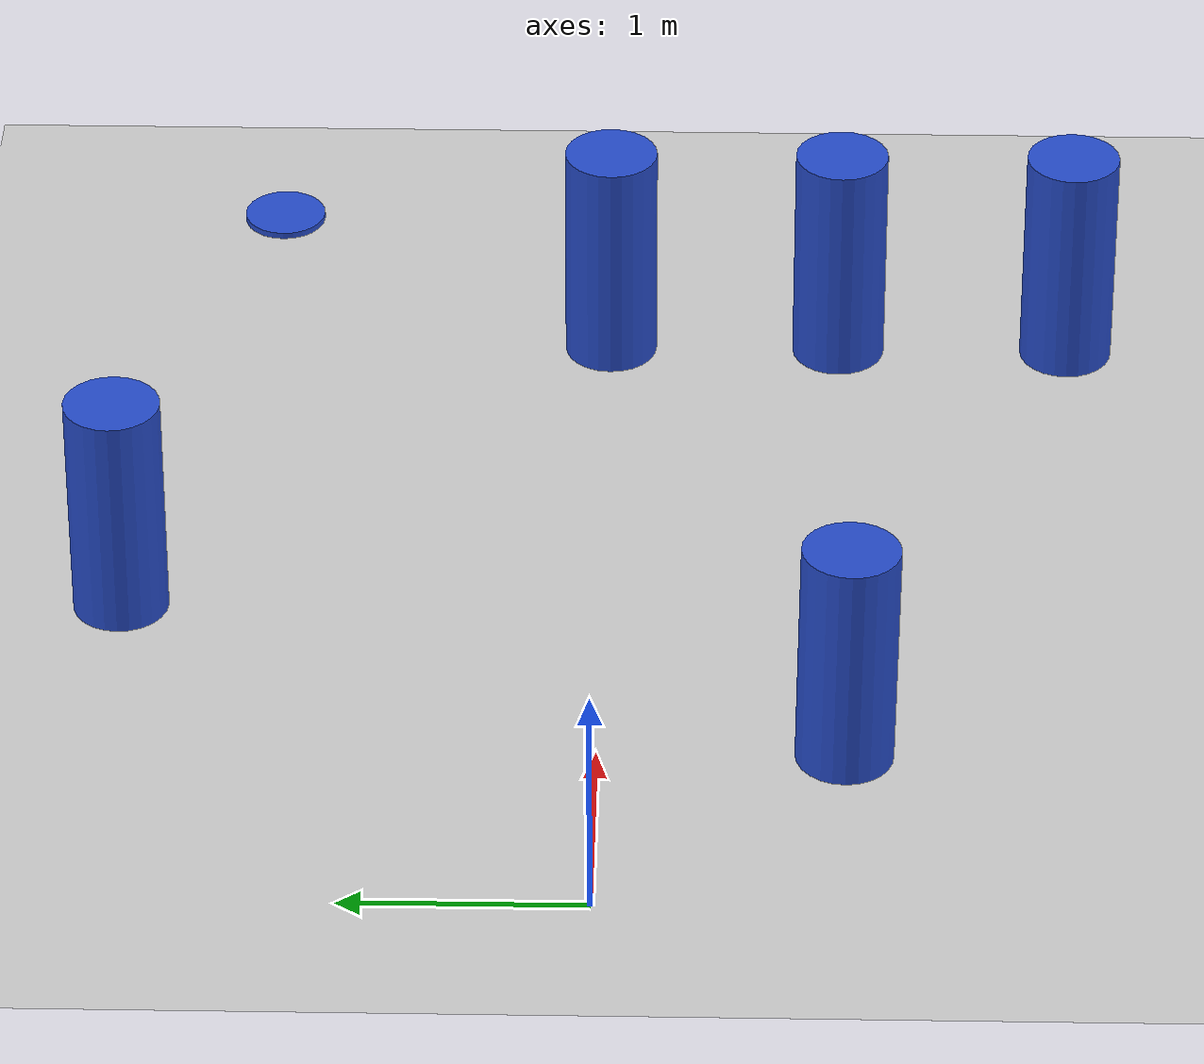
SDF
<sdf version="1.7">
 <world name="default">
  <physics type="ode">
   <ode>
    <solver>
     <type>quick</type>
     <iters>20</iters>
     <sor>1</sor>
     <use_dynamic_moi_rescaling>0</use_dynamic_moi_rescaling>
    </solver>
    <constraints>
     <cfm>0</cfm>
     <erp>0.2</erp>
     <contact_max_correcting_vel>100</contact_max_correcting_vel>
     <contact_surface_layer>0</contact_surface_layer>
    </constraints>
   </ode>
   <real_time_update_rate>1000</real_time_update_rate>
   <max_step_size>0.001</max_step_size>
   <real_time_factor>1</real_time_factor>
  </physics>
  <light name="sun" type="directional">
   <pose>0 0 10 0 -0 0</pose>
   <diffuse>0.8 0.8 0.8 1</diffuse>
   <specular>0.2 0.2 0.2 1</specular>
   <attenuation>
    <range>1000</range>
    <constant>0.9</constant>
    <linear>0.01</linear>
    <quadratic>0.001</quadratic>
   </attenuation>
   <direction>-0.5 0.1 -0.9</direction>
   <spot><inner_angle>0</inner_angle><outer_angle>0</outer_angle><falloff>0</falloff></spot>
  </light>
  <model name="ground_plane">
   <static>1</static>
   <link name="link">
    <collision name="collision">
     <geometry><plane><normal>0 0 1</normal><size>100 100</size></plane></geometry>
     <surface>
      <contact><collide_bitmask>65535</collide_bitmask></contact>
      <friction><ode><mu>100</mu><mu2>50</mu2></ode></friction>
     </surface>
    </collision>
    <visual name="visual">
     <cast_shadows>0</cast_shadows>
     <geometry><plane><normal>0 0 1</normal><size>100 100</size></plane></geometry>
     <material>
      <script><uri>file://media/materials/scripts/gazebo.material</uri><name>Gazebo/Grey</name></script>
     </material>
    </visual>
   </link>
  </model>
  <gravity>0 0 -9.81</gravity>
  <magnetic_field>6e-06 2.3e-05 -4.2e-05</magnetic_field>
  <atmosphere type="adiabatic"/>
  <scene><ambient>0.4 0.4 0.4 1</ambient><background>0.7 0.7 0.7 1</background><shadows>1</shadows></scene>
  <spherical_coordinates>
   <surface_model>EARTH_WGS84</surface_model>
   <latitude_deg>0</latitude_deg>
   <longitude_deg>0</longitude_deg>
   <elevation>0</elevation>
   <heading_deg>0</heading_deg>
  </spherical_coordinates>
  <model name="20x100cm_cylinder">
   <link name="link">
    <inertial>
     <mass>1</mass>
     <inertia><ixx>0.145833</ixx><ixy>0</ixy><ixz>0</ixz><iyy>0.145833</iyy><iyz>0</iyz><izz>0.125</izz></inertia>
    </inertial>
    <visual name="visual">
     <geometry><cylinder><radius>0.2</radius><length>1</length></cylinder></geometry>
     <material>
      <script><name>Gazebo/Blue</name><uri>file://media/materials/scripts/gazebo.material</uri></script>
      <shader type="pixel"><normal_map>__default__</normal_map></shader>
      <ambient>0.3 0.3 0.3 1</ambient>
      <diffuse>0.7 0.7 0.7 1</diffuse>
      <specular>0.01 0.01 0.01 1</specular>
      <emissive>0 0 0 1</emissive>
     </material>
    </visual>
    <collision name="collision">
     <geometry><cylinder><radius>0.2</radius><length>1</length></cylinder></geometry>
     <surface>
      <friction>
       <ode><mu>1</mu><mu2>1</mu2><fdir1>0 0 0</fdir1><slip1>0</slip1><slip2>0</slip2></ode>
       <torsional>
        <coefficient>1</coefficient>
        <patch_radius>0</patch_radius>
        <surface_radius>0</surface_radius>
        <use_patch_radius>1</use_patch_radius>
        <ode><slip>0</slip></ode>
       </torsional>
      </friction>
      <bounce><restitution_coefficient>0</restitution_coefficient><threshold>1e+06</threshold></bounce>
      <contact>
       <collide_without_contact>0</collide_without_contact>
       <collide_without_contact_bitmask>1</collide_without_contact_bitmask>
       <collide_bitmask>1</collide_bitmask>
       <ode>
        <soft_cfm>0</soft_cfm>
        <soft_erp>0.2</soft_erp>
        <kp>1e+13</kp>
        <kd>1</kd>
        <max_vel>0.01</max_vel>
        <min_depth>0</min_depth>
       </ode>
       <bullet>
        <split_impulse>1</split_impulse>
        <split_impulse_penetration_threshold>-0.01</split_impulse_penetration_threshold>
        <soft_cfm>0</soft_cfm>
        <soft_erp>0.2</soft_erp>
        <kp>1e+13</kp>
        <kd>1</kd>
       </bullet>
      </contact>
     </surface>
    </collision>
   </link>
   <static>0</static>
   <pose>2.00001 2 0.499999 0 0 -1.6e-05</pose>
  </model>
  <model name="20x100cm_cylinder_0">
   <link name="link">
    <inertial>
     <mass>1</mass>
     <inertia><ixx>0.145833</ixx><ixy>0</ixy><ixz>0</ixz><iyy>0.145833</iyy><iyz>0</iyz><izz>0.125</izz></inertia>
    </inertial>
    <visual name="visual">
     <geometry><cylinder><radius>0.2</radius><length>1</length></cylinder></geometry>
     <material>
      <script><name>Gazebo/Blue</name><uri>file://media/materials/scripts/gazebo.material</uri></script>
      <shader type="pixel"><normal_map>__default__</normal_map></shader>
      <ambient>0.3 0.3 0.3 1</ambient>
      <diffuse>0.7 0.7 0.7 1</diffuse>
      <specular>0.01 0.01 0.01 1</specular>
      <emissive>0 0 0 1</emissive>
     </material>
    </visual>
    <collision name="collision">
     <geometry><cylinder><radius>0.2</radius><length>1</length></cylinder></geometry>
     <surface>
      <friction>
       <ode><mu>1</mu><mu2>1</mu2><fdir1>0 0 0</fdir1><slip1>0</slip1><slip2>0</slip2></ode>
       <torsional>
        <coefficient>1</coefficient>
        <patch_radius>0</patch_radius>
        <surface_radius>0</surface_radius>
        <use_patch_radius>1</use_patch_radius>
        <ode><slip>0</slip></ode>
       </torsional>
      </friction>
      <bounce><restitution_coefficient>0</restitution_coefficient><threshold>1e+06</threshold></bounce>
      <contact>
       <collide_without_contact>0</collide_without_contact>
       <collide_without_contact_bitmask>1</collide_without_contact_bitmask>
       <collide_bitmask>1</collide_bitmask>
       <ode>
        <soft_cfm>0</soft_cfm>
        <soft_erp>0.2</soft_erp>
        <kp>1e+13</kp>
        <kd>1</kd>
        <max_vel>0.01</max_vel>
        <min_depth>0</min_depth>
       </ode>
       <bullet>
        <split_impulse>1</split_impulse>
        <split_impulse_penetration_threshold>-0.01</split_impulse_penetration_threshold>
        <soft_cfm>0</soft_cfm>
        <soft_erp>0.2</soft_erp>
        <kp>1e+13</kp>
        <kd>1</kd>
       </bullet>
      </contact>
     </surface>
    </collision>
   </link>
   <static>0</static>
   <pose>4.00001 -2 0.499999 0 0 -1.6e-05</pose>
  </model>
  <model name="20x100cm_cylinder_1">
   <link name="link">
    <inertial>
     <mass>1</mass>
     <inertia><ixx>0.145833</ixx><ixy>0</ixy><ixz>0</ixz><iyy>0.145833</iyy><iyz>0</iyz><izz>0.125</izz></inertia>
    </inertial>
    <visual name="visual">
     <geometry><cylinder><radius>0.2</radius><length>1</length></cylinder></geometry>
     <material>
      <script><name>Gazebo/Blue</name><uri>file://media/materials/scripts/gazebo.material</uri></script>
      <shader type="pixel"><normal_map>__default__</normal_map></shader>
      <ambient>0.3 0.3 0.3 1</ambient>
      <diffuse>0.7 0.7 0.7 1</diffuse>
      <specular>0.01 0.01 0.01 1</specular>
      <emissive>0 0 0 1</emissive>
     </material>
    </visual>
    <collision name="collision">
     <geometry><cylinder><radius>0.2</radius><length>1</length></cylinder></geometry>
     <surface>
      <friction>
       <ode><mu>1</mu><mu2>1</mu2><fdir1>0 0 0</fdir1><slip1>0</slip1><slip2>0</slip2></ode>
       <torsional>
        <coefficient>1</coefficient>
        <patch_radius>0</patch_radius>
        <surface_radius>0</surface_radius>
        <use_patch_radius>1</use_patch_radius>
        <ode><slip>0</slip></ode>
       </torsional>
      </friction>
      <bounce><restitution_coefficient>0</restitution_coefficient><threshold>1e+06</threshold></bounce>
      <contact>
       <collide_without_contact>0</collide_without_contact>
       <collide_without_contact_bitmask>1</collide_without_contact_bitmask>
       <collide_bitmask>1</collide_bitmask>
       <ode>
        <soft_cfm>0</soft_cfm>
        <soft_erp>0.2</soft_erp>
        <kp>1e+13</kp>
        <kd>1</kd>
        <max_vel>0.01</max_vel>
        <min_depth>0</min_depth>
       </ode>
       <bullet>
        <split_impulse>1</split_impulse>
        <split_impulse_penetration_threshold>-0.01</split_impulse_penetration_threshold>
        <soft_cfm>0</soft_cfm>
        <soft_erp>0.2</soft_erp>
        <kp>1e+13</kp>
        <kd>1</kd>
       </bullet>
      </contact>
     </surface>
    </collision>
   </link>
   <static>0</static>
   <pose>4.00001 3e-06 0.499999 0 0 -1.6e-05</pose>
  </model>
  <model name="20x100cm_cylinder_2">
   <link name="link">
    <inertial>
     <mass>1</mass>
     <inertia><ixx>0.145833</ixx><ixy>0</ixy><ixz>0</ixz><iyy>0.145833</iyy><iyz>0</iyz><izz>0.125</izz></inertia>
    </inertial>
    <visual name="visual">
     <geometry><cylinder><radius>0.2</radius><length>1</length></cylinder></geometry>
     <material>
      <script><name>Gazebo/Blue</name><uri>file://media/materials/scripts/gazebo.material</uri></script>
      <shader type="pixel"><normal_map>__default__</normal_map></shader>
      <ambient>0.3 0.3 0.3 1</ambient>
      <diffuse>0.7 0.7 0.7 1</diffuse>
      <specular>0.01 0.01 0.01 1</specular>
      <emissive>0 0 0 1</emissive>
     </material>
    </visual>
    <collision name="collision">
     <geometry><cylinder><radius>0.2</radius><length>1</length></cylinder></geometry>
     <surface>
      <friction>
       <ode><mu>1</mu><mu2>1</mu2><fdir1>0 0 0</fdir1><slip1>0</slip1><slip2>0</slip2></ode>
       <torsional>
        <coefficient>1</coefficient>
        <patch_radius>0</patch_radius>
        <surface_radius>0</surface_radius>
        <use_patch_radius>1</use_patch_radius>
        <ode><slip>0</slip></ode>
       </torsional>
      </friction>
      <bounce><restitution_coefficient>0</restitution_coefficient><threshold>1e+06</threshold></bounce>
      <contact>
       <collide_without_contact>0</collide_without_contact>
       <collide_without_contact_bitmask>1</collide_without_contact_bitmask>
       <collide_bitmask>1</collide_bitmask>
       <ode>
        <soft_cfm>0</soft_cfm>
        <soft_erp>0.2</soft_erp>
        <kp>1e+13</kp>
        <kd>1</kd>
        <max_vel>0.01</max_vel>
        <min_depth>0</min_depth>
       </ode>
       <bullet>
        <split_impulse>1</split_impulse>
        <split_impulse_penetration_threshold>-0.01</split_impulse_penetration_threshold>
        <soft_cfm>0</soft_cfm>
        <soft_erp>0.2</soft_erp>
        <kp>1e+13</kp>
        <kd>1</kd>
       </bullet>
      </contact>
     </surface>
    </collision>
   </link>
   <static>0</static>
   <pose>1.00787 -1.00473 0.503561 0.009653 0.015452 0.014008</pose>
  </model>
  <model name="20x100cm_cylinder_3">
   <link name="link">
    <inertial>
     <mass>1</mass>
     <inertia><ixx>0.145833</ixx><ixy>0</ixy><ixz>0</ixz><iyy>0.145833</iyy><iyz>0</iyz><izz>0.125</izz></inertia>
    </inertial>
    <visual name="visual">
     <geometry><cylinder><radius>0.2</radius><length>1</length></cylinder></geometry>
     <material>
      <script><name>Gazebo/Blue</name><uri>file://media/materials/scripts/gazebo.material</uri></script>
      <shader type="pixel"><normal_map>__default__</normal_map></shader>
      <ambient>0.3 0.3 0.3 1</ambient>
      <diffuse>0.7 0.7 0.7 1</diffuse>
      <specular>0.01 0.01 0.01 1</specular>
      <emissive>0 0 0 1</emissive>
     </material>
    </visual>
    <collision name="collision">
     <geometry><cylinder><radius>0.2</radius><length>1</length></cylinder></geometry>
     <surface>
      <friction>
       <ode><mu>1</mu><mu2>1</mu2><fdir1>0 0 0</fdir1><slip1>0</slip1><slip2>0</slip2></ode>
       <torsional>
        <coefficient>1</coefficient>
        <patch_radius>0</patch_radius>
        <surface_radius>0</surface_radius>
        <use_patch_radius>1</use_patch_radius>
        <ode><slip>0</slip></ode>
       </torsional>
      </friction>
      <bounce><restitution_coefficient>0</restitution_coefficient><threshold>1e+06</threshold></bounce>
      <contact>
       <collide_without_contact>0</collide_without_contact>
       <collide_without_contact_bitmask>1</collide_without_contact_bitmask>
       <collide_bitmask>1</collide_bitmask>
       <ode>
        <soft_cfm>0</soft_cfm>
        <soft_erp>0.2</soft_erp>
        <kp>1e+13</kp>
        <kd>1</kd>
        <max_vel>0.01</max_vel>
        <min_depth>0</min_depth>
       </ode>
       <bullet>
        <split_impulse>1</split_impulse>
        <split_impulse_penetration_threshold>-0.01</split_impulse_penetration_threshold>
        <soft_cfm>0</soft_cfm>
        <soft_erp>0.2</soft_erp>
        <kp>1e+13</kp>
        <kd>1</kd>
       </bullet>
      </contact>
     </surface>
    </collision>
   </link>
   <static>0</static>
   <pose>4.00001 -0.999997 0.499999 0 0 -1.6e-05</pose>
  </model>
  <model name="goal">
   <link name="link">
    <inertial>
     <mass>2.33165</mass>
     <inertia>
      <ixx>0.0190484</ixx>
      <ixy>0</ixy>
      <ixz>0</ixz>
      <iyy>0.0190484</iyy>
      <iyz>0</iyz>
      <izz>0.0377765</izz>
     </inertia>
    </inertial>
    <visual name="visual">
     <geometry><cylinder><radius>0.180009</radius><length>0.0287069</length></cylinder></geometry>
     <material>
      <script><name>Gazebo/Blue</name><uri>file://media/materials/scripts/gazebo.material</uri></script>
      <shader type="pixel"><normal_map>__default__</normal_map></shader>
      <ambient>0.3 0.3 0.3 1</ambient>
      <diffuse>0.7 0.7 0.7 1</diffuse>
      <specular>0.01 0.01 0.01 1</specular>
      <emissive>1 0 0 1</emissive>
     </material>
    </visual>
    <collision name="collision">
     <geometry><cylinder><radius>0.180009</radius><length>0.028707</length></cylinder></geometry>
     <surface>
      <friction>
       <ode><mu>1</mu><mu2>1</mu2><fdir1>0 0 0</fdir1><slip1>0</slip1><slip2>0</slip2></ode>
       <torsional>
        <coefficient>1</coefficient>
        <patch_radius>0</patch_radius>
        <surface_radius>0</surface_radius>
        <use_patch_radius>1</use_patch_radius>
        <ode><slip>0</slip></ode>
       </torsional>
      </friction>
      <bounce><restitution_coefficient>0</restitution_coefficient><threshold>1e+06</threshold></bounce>
      <contact>
       <collide_without_contact>0</collide_without_contact>
       <collide_without_contact_bitmask>1</collide_without_contact_bitmask>
       <collide_bitmask>1</collide_bitmask>
       <ode>
        <soft_cfm>0</soft_cfm>
        <soft_erp>0.2</soft_erp>
        <kp>1e+13</kp>
        <kd>1</kd>
        <max_vel>0.01</max_vel>
        <min_depth>0</min_depth>
       </ode>
       <bullet>
        <split_impulse>1</split_impulse>
        <split_impulse_penetration_threshold>-0.01</split_impulse_penetration_threshold>
        <soft_cfm>0</soft_cfm>
        <soft_erp>0.2</soft_erp>
        <kp>1e+13</kp>
        <kd>1</kd>
       </bullet>
      </contact>
     </surface>
    </collision>
   </link>
   <static>0</static>
   <pose>5 1.5 0.042519 0 -0 0</pose>
  </model>
 </world>
</sdf>
